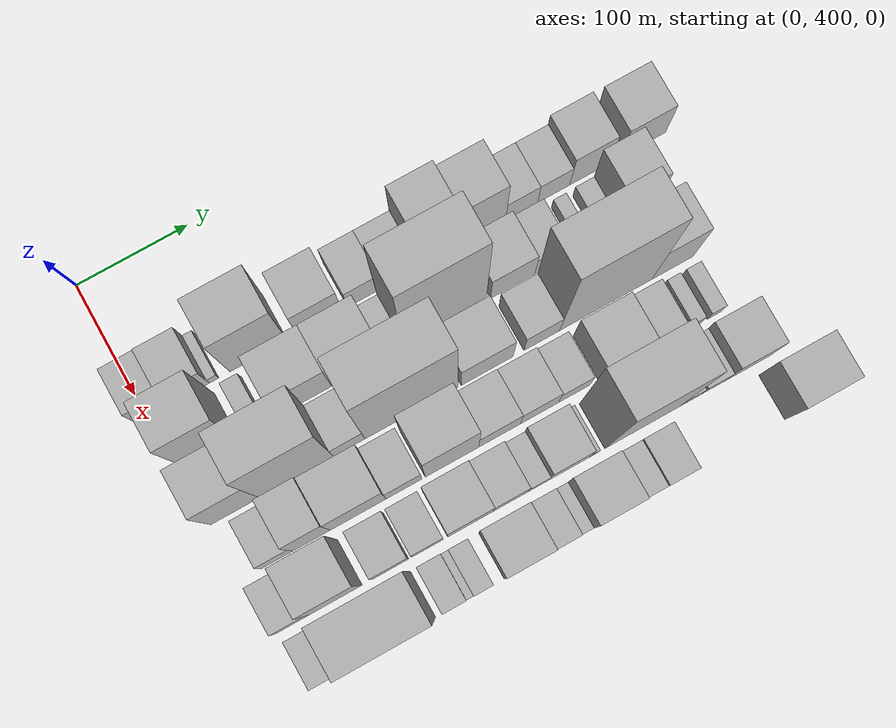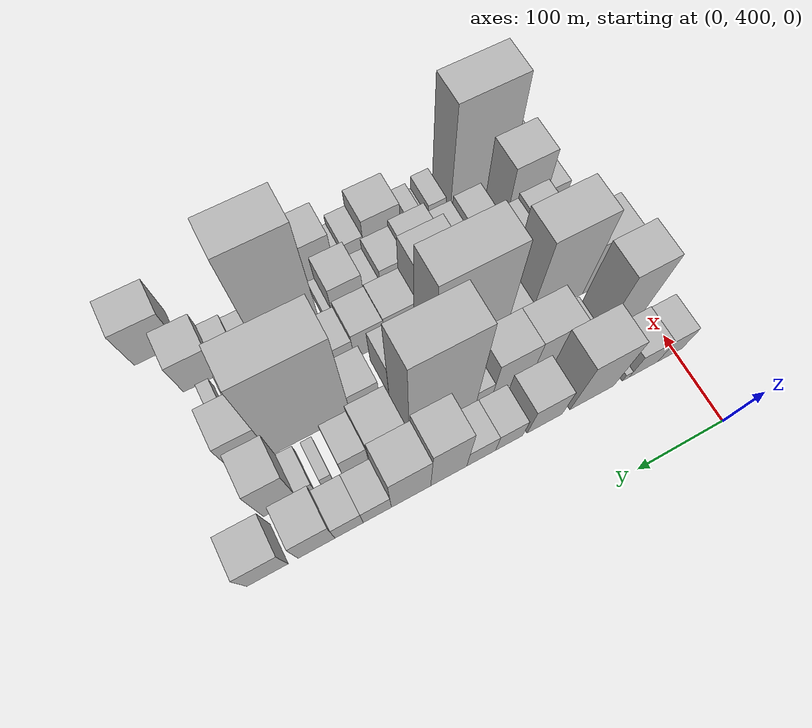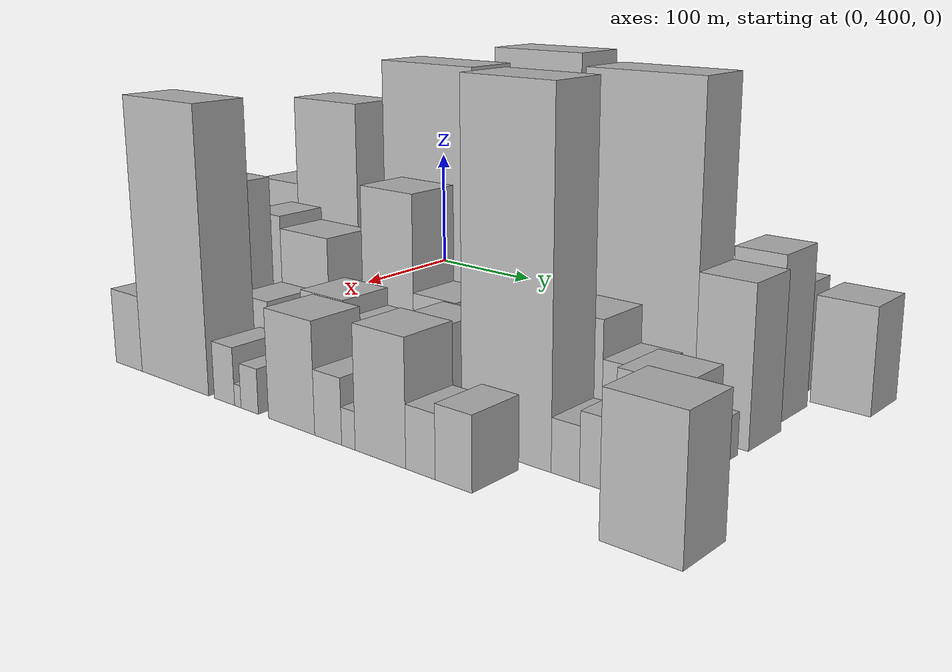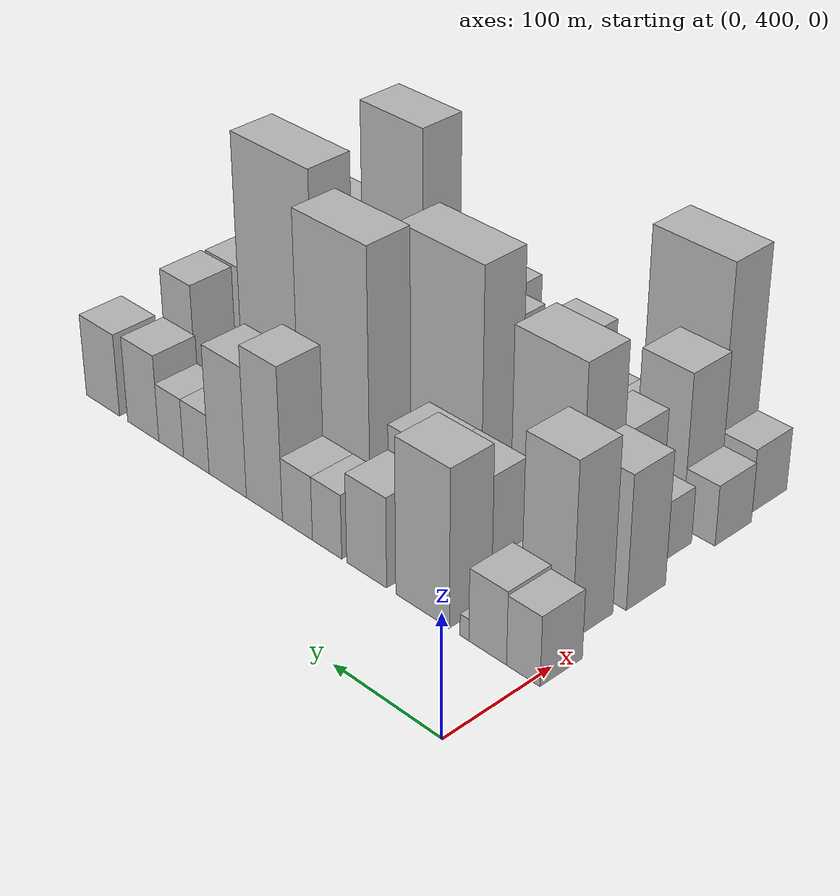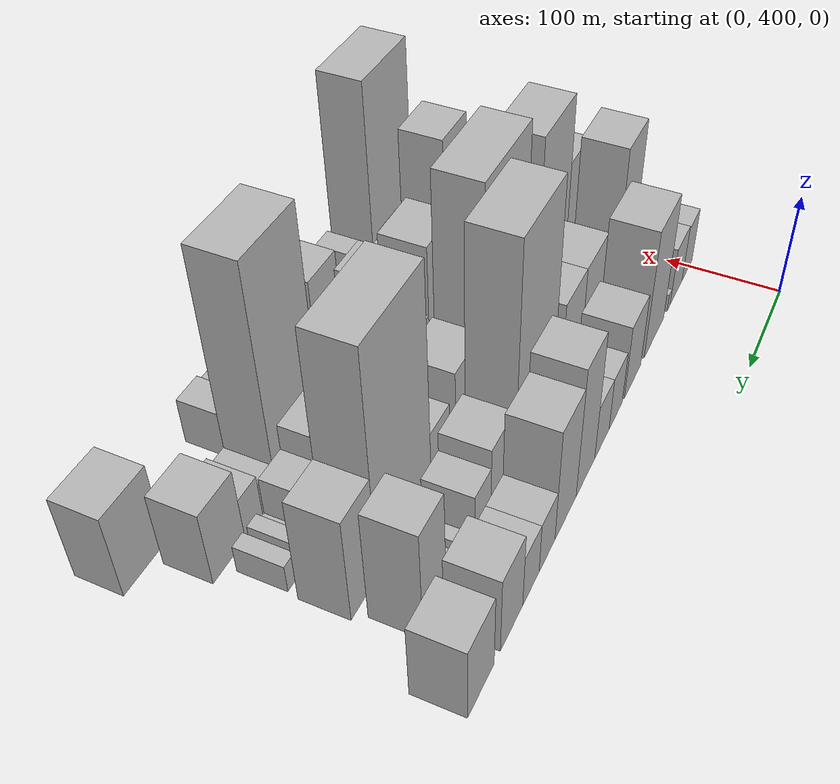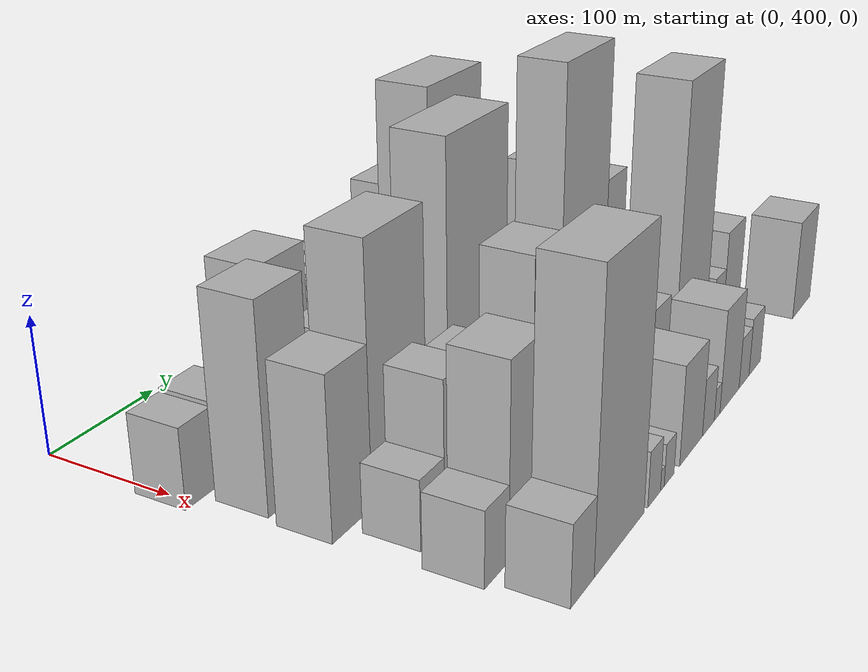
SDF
<sdf version="1.6">
 <world name="default">
  <model name="building_29">
   <static>1</static>
   <pose>100.0000 406.4023 0 0.000000 0.000000 0.000000</pose>
   <link name="link">
    <pose>0 0 28.50 0 0 0</pose>
    <collision name="collision"><geometry><box><size>40.0000 29.8800 57.0000</size></box></geometry></collision>
    <visual name="visual">
     <cast_shadows>0</cast_shadows>
     <geometry><box><size>40.0000 29.8800 57.0000</size></box></geometry>
     <material>
      <script>
       <uri>model://HANNAS_wall/materials/scripts</uri>
       <uri>model://HANNAS_wall/materials/textures</uri>
       <name>vrc/HANNAS_wall</name>
      </script>
     </material>
    </visual>
   </link>
  </model>
  <model name="building_30">
   <static>1</static>
   <pose>100.0000 438.5393 0 0.000000 0.000000 0.000000</pose>
   <link name="link">
    <pose>0 0 30.00 0 0 0</pose>
    <collision name="collision"><geometry><box><size>40.0000 34.3940 60.0000</size></box></geometry></collision>
    <visual name="visual">
     <cast_shadows>0</cast_shadows>
     <geometry><box><size>40.0000 34.3940 60.0000</size></box></geometry>
     <material>
      <script>
       <uri>model://HANNAS_wall/materials/scripts</uri>
       <uri>model://HANNAS_wall/materials/textures</uri>
       <name>vrc/HANNAS_wall</name>
      </script>
     </material>
    </visual>
   </link>
  </model>
  <model name="building_31">
   <static>1</static>
   <pose>100.0000 459.8285 0 0.000000 0.000000 0.000000</pose>
   <link name="link">
    <pose>0 0 9.00 0 0 0</pose>
    <collision name="collision"><geometry><box><size>40.0000 8.1844 18.0000</size></box></geometry></collision>
    <visual name="visual">
     <cast_shadows>0</cast_shadows>
     <geometry><box><size>40.0000 8.1844 18.0000</size></box></geometry>
     <material>
      <script>
       <uri>model://HANNAS_wall/materials/scripts</uri>
       <uri>model://HANNAS_wall/materials/textures</uri>
       <name>vrc/HANNAS_wall</name>
      </script>
     </material>
    </visual>
   </link>
  </model>
  <model name="building_32">
   <static>1</static>
   <pose>100.0000 499.5595 0 0.000000 0.000000 0.000000</pose>
   <link name="link">
    <pose>0 0 64.50 0 0 0</pose>
    <collision name="collision"><geometry><box><size>40.0000 51.2776 129.0000</size></box></geometry></collision>
    <visual name="visual">
     <cast_shadows>0</cast_shadows>
     <geometry><box><size>40.0000 51.2776 129.0000</size></box></geometry>
     <material>
      <script>
       <uri>model://HANNAS_wall/materials/scripts</uri>
       <uri>model://HANNAS_wall/materials/textures</uri>
       <name>vrc/HANNAS_wall</name>
      </script>
     </material>
    </visual>
   </link>
  </model>
  <model name="building_33">
   <static>1</static>
   <pose>100.0000 554.1945 0 0.000000 0.000000 0.000000</pose>
   <link name="link">
    <pose>0 0 37.50 0 0 0</pose>
    <collision name="collision"><geometry><box><size>40.0000 39.9924 75.0000</size></box></geometry></collision>
    <visual name="visual">
     <cast_shadows>0</cast_shadows>
     <geometry><box><size>40.0000 39.9924 75.0000</size></box></geometry>
     <material>
      <script>
       <uri>model://HANNAS_wall/materials/scripts</uri>
       <uri>model://HANNAS_wall/materials/textures</uri>
       <name>vrc/HANNAS_wall</name>
      </script>
     </material>
    </visual>
   </link>
  </model>
  <model name="building_34">
   <static>1</static>
   <pose>100.0000 594.3799 0 0.000000 0.000000 0.000000</pose>
   <link name="link">
    <pose>0 0 27.00 0 0 0</pose>
    <collision name="collision"><geometry><box><size>40.0000 30.3784 54.0000</size></box></geometry></collision>
    <visual name="visual">
     <cast_shadows>0</cast_shadows>
     <geometry><box><size>40.0000 30.3784 54.0000</size></box></geometry>
     <material>
      <script>
       <uri>model://HANNAS_wall/materials/scripts</uri>
       <uri>model://HANNAS_wall/materials/textures</uri>
       <name>vrc/HANNAS_wall</name>
      </script>
     </material>
    </visual>
   </link>
  </model>
  <model name="building_35">
   <static>1</static>
   <pose>100.0000 625.4198 0 0.000000 0.000000 0.000000</pose>
   <link name="link">
    <pose>0 0 27.00 0 0 0</pose>
    <collision name="collision"><geometry><box><size>40.0000 31.7014 54.0000</size></box></geometry></collision>
    <visual name="visual">
     <cast_shadows>0</cast_shadows>
     <geometry><box><size>40.0000 31.7014 54.0000</size></box></geometry>
     <material>
      <script>
       <uri>model://HANNAS_wall/materials/scripts</uri>
       <uri>model://HANNAS_wall/materials/textures</uri>
       <name>vrc/HANNAS_wall</name>
      </script>
     </material>
    </visual>
   </link>
  </model>
  <model name="building_36">
   <static>1</static>
   <pose>100.0000 660.8148 0 0.000000 0.000000 0.000000</pose>
   <link name="link">
    <pose>0 0 64.50 0 0 0</pose>
    <collision name="collision"><geometry><box><size>40.0000 39.0887 129.0000</size></box></geometry></collision>
    <visual name="visual">
     <cast_shadows>0</cast_shadows>
     <geometry><box><size>40.0000 39.0887 129.0000</size></box></geometry>
     <material>
      <script>
       <uri>model://HANNAS_wall/materials/scripts</uri>
       <uri>model://HANNAS_wall/materials/textures</uri>
       <name>vrc/HANNAS_wall</name>
      </script>
     </material>
    </visual>
   </link>
  </model>
  <model name="building_37">
   <static>1</static>
   <pose>100.0000 701.2705 0 0.000000 0.000000 0.000000</pose>
   <link name="link">
    <pose>0 0 55.50 0 0 0</pose>
    <collision name="collision"><geometry><box><size>40.0000 41.8226 111.0000</size></box></geometry></collision>
    <visual name="visual">
     <cast_shadows>0</cast_shadows>
     <geometry><box><size>40.0000 41.8226 111.0000</size></box></geometry>
     <material>
      <script>
       <uri>model://HANNAS_wall/materials/scripts</uri>
       <uri>model://HANNAS_wall/materials/textures</uri>
       <name>vrc/HANNAS_wall</name>
      </script>
     </material>
    </visual>
   </link>
  </model>
  <model name="building_38">
   <static>1</static>
   <pose>100.0000 736.8857 0 0.000000 0.000000 0.000000</pose>
   <link name="link">
    <pose>0 0 25.50 0 0 0</pose>
    <collision name="collision"><geometry><box><size>40.0000 29.4078 51.0000</size></box></geometry></collision>
    <visual name="visual">
     <cast_shadows>0</cast_shadows>
     <geometry><box><size>40.0000 29.4078 51.0000</size></box></geometry>
     <material>
      <script>
       <uri>model://HANNAS_wall/materials/scripts</uri>
       <uri>model://HANNAS_wall/materials/textures</uri>
       <name>vrc/HANNAS_wall</name>
      </script>
     </material>
    </visual>
   </link>
  </model>
  <model name="building_39">
   <static>1</static>
   <pose>100.0000 766.1120 0 0.000000 0.000000 0.000000</pose>
   <link name="link">
    <pose>0 0 25.50 0 0 0</pose>
    <collision name="collision"><geometry><box><size>40.0000 29.0448 51.0000</size></box></geometry></collision>
    <visual name="visual">
     <cast_shadows>0</cast_shadows>
     <geometry><box><size>40.0000 29.0448 51.0000</size></box></geometry>
     <material>
      <script>
       <uri>model://HANNAS_wall/materials/scripts</uri>
       <uri>model://HANNAS_wall/materials/textures</uri>
       <name>vrc/HANNAS_wall</name>
      </script>
     </material>
    </visual>
   </link>
  </model>
  <model name="building_40">
   <static>1</static>
   <pose>100.0000 799.3854 0 0.000000 0.000000 0.000000</pose>
   <link name="link">
    <pose>0 0 37.50 0 0 0</pose>
    <collision name="collision"><geometry><box><size>40.0000 37.5020 75.0000</size></box></geometry></collision>
    <visual name="visual">
     <cast_shadows>0</cast_shadows>
     <geometry><box><size>40.0000 37.5020 75.0000</size></box></geometry>
     <material>
      <script>
       <uri>model://HANNAS_wall/materials/scripts</uri>
       <uri>model://HANNAS_wall/materials/textures</uri>
       <name>vrc/HANNAS_wall</name>
      </script>
     </material>
    </visual>
   </link>
  </model>
  <model name="building_41">
   <static>1</static>
   <pose>100.0000 848.6596 0 0.000000 0.000000 0.000000</pose>
   <link name="link">
    <pose>0 0 36.00 0 0 0</pose>
    <collision name="collision"><geometry><box><size>40.0000 41.0464 72.0000</size></box></geometry></collision>
    <visual name="visual">
     <cast_shadows>0</cast_shadows>
     <geometry><box><size>40.0000 41.0464 72.0000</size></box></geometry>
     <material>
      <script>
       <uri>model://HANNAS_wall/materials/scripts</uri>
       <uri>model://HANNAS_wall/materials/textures</uri>
       <name>vrc/HANNAS_wall</name>
      </script>
     </material>
    </visual>
   </link>
  </model>
  <model name="building_82">
   <static>1</static>
   <pose>149.0000 431.8965 0 0.000000 0.000000 0.000000</pose>
   <link name="link">
    <pose>0 0 72.00 0 0 0</pose>
    <collision name="collision"><geometry><box><size>40.0000 46.3476 144.0000</size></box></geometry></collision>
    <visual name="visual">
     <cast_shadows>0</cast_shadows>
     <geometry><box><size>40.0000 46.3476 144.0000</size></box></geometry>
     <material>
      <script>
       <uri>model://HANNAS_wall/materials/scripts</uri>
       <uri>model://HANNAS_wall/materials/textures</uri>
       <name>vrc/HANNAS_wall</name>
      </script>
     </material>
    </visual>
   </link>
  </model>
  <model name="building_83">
   <static>1</static>
   <pose>149.0000 471.9510 0 0.000000 0.000000 0.000000</pose>
   <link name="link">
    <pose>0 0 15.00 0 0 0</pose>
    <collision name="collision"><geometry><box><size>40.0000 15.7613 30.0000</size></box></geometry></collision>
    <visual name="visual">
     <cast_shadows>0</cast_shadows>
     <geometry><box><size>40.0000 15.7613 30.0000</size></box></geometry>
     <material>
      <script>
       <uri>model://HANNAS_wall/materials/scripts</uri>
       <uri>model://HANNAS_wall/materials/textures</uri>
       <name>vrc/HANNAS_wall</name>
      </script>
     </material>
    </visual>
   </link>
  </model>
  <model name="building_84">
   <static>1</static>
   <pose>149.0000 513.9634 0 0.000000 0.000000 0.000000</pose>
   <link name="link">
    <pose>0 0 43.50 0 0 0</pose>
    <collision name="collision"><geometry><box><size>40.0000 48.2635 87.0000</size></box></geometry></collision>
    <visual name="visual">
     <cast_shadows>0</cast_shadows>
     <geometry><box><size>40.0000 48.2635 87.0000</size></box></geometry>
     <material>
      <script>
       <uri>model://HANNAS_wall/materials/scripts</uri>
       <uri>model://HANNAS_wall/materials/textures</uri>
       <name>vrc/HANNAS_wall</name>
      </script>
     </material>
    </visual>
   </link>
  </model>
  <model name="building_85">
   <static>1</static>
   <pose>149.0000 560.9323 0 0.000000 0.000000 0.000000</pose>
   <link name="link">
    <pose>0 0 43.50 0 0 0</pose>
    <collision name="collision"><geometry><box><size>40.0000 45.6744 87.0000</size></box></geometry></collision>
    <visual name="visual">
     <cast_shadows>0</cast_shadows>
     <geometry><box><size>40.0000 45.6744 87.0000</size></box></geometry>
     <material>
      <script>
       <uri>model://HANNAS_wall/materials/scripts</uri>
       <uri>model://HANNAS_wall/materials/textures</uri>
       <name>vrc/HANNAS_wall</name>
      </script>
     </material>
    </visual>
   </link>
  </model>
  <model name="building_86">
   <static>1</static>
   <pose>149.0000 593.2143 0 0.000000 0.000000 0.000000</pose>
   <link name="link">
    <pose>0 0 18.00 0 0 0</pose>
    <collision name="collision"><geometry><box><size>40.0000 18.8897 36.0000</size></box></geometry></collision>
    <visual name="visual">
     <cast_shadows>0</cast_shadows>
     <geometry><box><size>40.0000 18.8897 36.0000</size></box></geometry>
     <material>
      <script>
       <uri>model://HANNAS_wall/materials/scripts</uri>
       <uri>model://HANNAS_wall/materials/textures</uri>
       <name>vrc/HANNAS_wall</name>
      </script>
     </material>
    </visual>
   </link>
  </model>
  <model name="building_87">
   <static>1</static>
   <pose>149.0000 639.7672 0 0.000000 0.000000 0.000000</pose>
   <link name="link">
    <pose>0 0 109.50 0 0 0</pose>
    <collision name="collision"><geometry><box><size>40.0000 74.2161 219.0000</size></box></geometry></collision>
    <visual name="visual">
     <cast_shadows>0</cast_shadows>
     <geometry><box><size>40.0000 74.2161 219.0000</size></box></geometry>
     <material>
      <script>
       <uri>model://HANNAS_wall/materials/scripts</uri>
       <uri>model://HANNAS_wall/materials/textures</uri>
       <name>vrc/HANNAS_wall</name>
      </script>
     </material>
    </visual>
   </link>
  </model>
  <model name="building_88">
   <static>1</static>
   <pose>149.0000 700.9446 0 0.000000 0.000000 0.000000</pose>
   <link name="link">
    <pose>0 0 34.50 0 0 0</pose>
    <collision name="collision"><geometry><box><size>40.0000 40.1387 69.0000</size></box></geometry></collision>
    <visual name="visual">
     <cast_shadows>0</cast_shadows>
     <geometry><box><size>40.0000 40.1387 69.0000</size></box></geometry>
     <material>
      <script>
       <uri>model://HANNAS_wall/materials/scripts</uri>
       <uri>model://HANNAS_wall/materials/textures</uri>
       <name>vrc/HANNAS_wall</name>
      </script>
     </material>
    </visual>
   </link>
  </model>
  <model name="building_89">
   <static>1</static>
   <pose>149.0000 734.9529 0 0.000000 0.000000 0.000000</pose>
   <link name="link">
    <pose>0 0 25.50 0 0 0</pose>
    <collision name="collision"><geometry><box><size>40.0000 27.8779 51.0000</size></box></geometry></collision>
    <visual name="visual">
     <cast_shadows>0</cast_shadows>
     <geometry><box><size>40.0000 27.8779 51.0000</size></box></geometry>
     <material>
      <script>
       <uri>model://HANNAS_wall/materials/scripts</uri>
       <uri>model://HANNAS_wall/materials/textures</uri>
       <name>vrc/HANNAS_wall</name>
      </script>
     </material>
    </visual>
   </link>
  </model>
  <model name="building_90">
   <static>1</static>
   <pose>149.0000 764.7076 0 0.000000 0.000000 0.000000</pose>
   <link name="link">
    <pose>0 0 13.50 0 0 0</pose>
    <collision name="collision"><geometry><box><size>40.0000 11.6316 27.0000</size></box></geometry></collision>
    <visual name="visual">
     <cast_shadows>0</cast_shadows>
     <geometry><box><size>40.0000 11.6316 27.0000</size></box></geometry>
     <material>
      <script>
       <uri>model://HANNAS_wall/materials/scripts</uri>
       <uri>model://HANNAS_wall/materials/textures</uri>
       <name>vrc/HANNAS_wall</name>
      </script>
     </material>
    </visual>
   </link>
  </model>
  <model name="building_91">
   <static>1</static>
   <pose>149.0000 786.8840 0 0.000000 0.000000 0.000000</pose>
   <link name="link">
    <pose>0 0 15.00 0 0 0</pose>
    <collision name="collision"><geometry><box><size>40.0000 16.7212 30.0000</size></box></geometry></collision>
    <visual name="visual">
     <cast_shadows>0</cast_shadows>
     <geometry><box><size>40.0000 16.7212 30.0000</size></box></geometry>
     <material>
      <script>
       <uri>model://HANNAS_wall/materials/scripts</uri>
       <uri>model://HANNAS_wall/materials/textures</uri>
       <name>vrc/HANNAS_wall</name>
      </script>
     </material>
    </visual>
   </link>
  </model>
  <model name="building_92">
   <static>1</static>
   <pose>149.0000 812.8694 0 0.000000 0.000000 0.000000</pose>
   <link name="link">
    <pose>0 0 54.00 0 0 0</pose>
    <collision name="collision"><geometry><box><size>40.0000 35.2496 108.0000</size></box></geometry></collision>
    <visual name="visual">
     <cast_shadows>0</cast_shadows>
     <geometry><box><size>40.0000 35.2496 108.0000</size></box></geometry>
     <material>
      <script>
       <uri>model://HANNAS_wall/materials/scripts</uri>
       <uri>model://HANNAS_wall/materials/textures</uri>
       <name>vrc/HANNAS_wall</name>
      </script>
     </material>
    </visual>
   </link>
  </model>
  <model name="building_133">
   <static>1</static>
   <pose>198.0000 426.0034 0 0.000000 0.000000 0.000000</pose>
   <link name="link">
    <pose>0 0 55.50 0 0 0</pose>
    <collision name="collision"><geometry><box><size>40.0000 42.8497 111.0000</size></box></geometry></collision>
    <visual name="visual">
     <cast_shadows>0</cast_shadows>
     <geometry><box><size>40.0000 42.8497 111.0000</size></box></geometry>
     <material>
      <script>
       <uri>model://HANNAS_wall/materials/scripts</uri>
       <uri>model://HANNAS_wall/materials/textures</uri>
       <name>vrc/HANNAS_wall</name>
      </script>
     </material>
    </visual>
   </link>
  </model>
  <model name="building_134">
   <static>1</static>
   <pose>198.0000 480.1578 0 0.000000 0.000000 0.000000</pose>
   <link name="link">
    <pose>0 0 88.50 0 0 0</pose>
    <collision name="collision"><geometry><box><size>40.0000 65.4592 177.0000</size></box></geometry></collision>
    <visual name="visual">
     <cast_shadows>0</cast_shadows>
     <geometry><box><size>40.0000 65.4592 177.0000</size></box></geometry>
     <material>
      <script>
       <uri>model://HANNAS_wall/materials/scripts</uri>
       <uri>model://HANNAS_wall/materials/textures</uri>
       <name>vrc/HANNAS_wall</name>
      </script>
     </material>
    </visual>
   </link>
  </model>
  <model name="building_135">
   <static>1</static>
   <pose>198.0000 526.9653 0 0.000000 0.000000 0.000000</pose>
   <link name="link">
    <pose>0 0 24.00 0 0 0</pose>
    <collision name="collision"><geometry><box><size>40.0000 28.1558 48.0000</size></box></geometry></collision>
    <visual name="visual">
     <cast_shadows>0</cast_shadows>
     <geometry><box><size>40.0000 28.1558 48.0000</size></box></geometry>
     <material>
      <script>
       <uri>model://HANNAS_wall/materials/scripts</uri>
       <uri>model://HANNAS_wall/materials/textures</uri>
       <name>vrc/HANNAS_wall</name>
      </script>
     </material>
    </visual>
   </link>
  </model>
  <model name="building_136">
   <static>1</static>
   <pose>198.0000 582.4187 0 0.000000 0.000000 0.000000</pose>
   <link name="link">
    <pose>0 0 105.00 0 0 0</pose>
    <collision name="collision"><geometry><box><size>40.0000 82.7510 210.0000</size></box></geometry></collision>
    <visual name="visual">
     <cast_shadows>0</cast_shadows>
     <geometry><box><size>40.0000 82.7510 210.0000</size></box></geometry>
     <material>
      <script>
       <uri>model://HANNAS_wall/materials/scripts</uri>
       <uri>model://HANNAS_wall/materials/textures</uri>
       <name>vrc/HANNAS_wall</name>
      </script>
     </material>
    </visual>
   </link>
  </model>
  <model name="building_137">
   <static>1</static>
   <pose>198.0000 650.1259 0 0.000000 0.000000 0.000000</pose>
   <link name="link">
    <pose>0 0 39.00 0 0 0</pose>
    <collision name="collision"><geometry><box><size>40.0000 46.6636 78.0000</size></box></geometry></collision>
    <visual name="visual">
     <cast_shadows>0</cast_shadows>
     <geometry><box><size>40.0000 46.6636 78.0000</size></box></geometry>
     <material>
      <script>
       <uri>model://HANNAS_wall/materials/scripts</uri>
       <uri>model://HANNAS_wall/materials/textures</uri>
       <name>vrc/HANNAS_wall</name>
      </script>
     </material>
    </visual>
   </link>
  </model>
  <model name="building_138">
   <static>1</static>
   <pose>198.0000 699.4425 0 0.000000 0.000000 0.000000</pose>
   <link name="link">
    <pose>0 0 28.50 0 0 0</pose>
    <collision name="collision"><geometry><box><size>40.0000 31.9695 57.0000</size></box></geometry></collision>
    <visual name="visual">
     <cast_shadows>0</cast_shadows>
     <geometry><box><size>40.0000 31.9695 57.0000</size></box></geometry>
     <material>
      <script>
       <uri>model://HANNAS_wall/materials/scripts</uri>
       <uri>model://HANNAS_wall/materials/textures</uri>
       <name>vrc/HANNAS_wall</name>
      </script>
     </material>
    </visual>
   </link>
  </model>
  <model name="building_139">
   <static>1</static>
   <pose>198.0000 757.5157 0 0.000000 0.000000 0.000000</pose>
   <link name="link">
    <pose>0 0 108.00 0 0 0</pose>
    <collision name="collision"><geometry><box><size>40.0000 84.1770 216.0000</size></box></geometry></collision>
    <visual name="visual">
     <cast_shadows>0</cast_shadows>
     <geometry><box><size>40.0000 84.1770 216.0000</size></box></geometry>
     <material>
      <script>
       <uri>model://HANNAS_wall/materials/scripts</uri>
       <uri>model://HANNAS_wall/materials/textures</uri>
       <name>vrc/HANNAS_wall</name>
      </script>
     </material>
    </visual>
   </link>
  </model>
  <model name="building_140">
   <static>1</static>
   <pose>198.0000 818.4110 0 0.000000 0.000000 0.000000</pose>
   <link name="link">
    <pose>0 0 51.00 0 0 0</pose>
    <collision name="collision"><geometry><box><size>40.0000 37.6136 102.0000</size></box></geometry></collision>
    <visual name="visual">
     <cast_shadows>0</cast_shadows>
     <geometry><box><size>40.0000 37.6136 102.0000</size></box></geometry>
     <material>
      <script>
       <uri>model://HANNAS_wall/materials/scripts</uri>
       <uri>model://HANNAS_wall/materials/textures</uri>
       <name>vrc/HANNAS_wall</name>
      </script>
     </material>
    </visual>
   </link>
  </model>
  <model name="building_179">
   <static>1</static>
   <pose>247.0000 436.6323 0 0.000000 0.000000 0.000000</pose>
   <link name="link">
    <pose>0 0 24.00 0 0 0</pose>
    <collision name="collision"><geometry><box><size>40.0000 27.7295 48.0000</size></box></geometry></collision>
    <visual name="visual">
     <cast_shadows>0</cast_shadows>
     <geometry><box><size>40.0000 27.7295 48.0000</size></box></geometry>
     <material>
      <script>
       <uri>model://HANNAS_wall/materials/scripts</uri>
       <uri>model://HANNAS_wall/materials/textures</uri>
       <name>vrc/HANNAS_wall</name>
      </script>
     </material>
    </visual>
   </link>
  </model>
  <model name="building_180">
   <static>1</static>
   <pose>247.0000 466.9779 0 0.000000 0.000000 0.000000</pose>
   <link name="link">
    <pose>0 0 49.50 0 0 0</pose>
    <collision name="collision"><geometry><box><size>40.0000 32.9617 99.0000</size></box></geometry></collision>
    <visual name="visual">
     <cast_shadows>0</cast_shadows>
     <geometry><box><size>40.0000 32.9617 99.0000</size></box></geometry>
     <material>
      <script>
       <uri>model://HANNAS_wall/materials/scripts</uri>
       <uri>model://HANNAS_wall/materials/textures</uri>
       <name>vrc/HANNAS_wall</name>
      </script>
     </material>
    </visual>
   </link>
  </model>
  <model name="building_181">
   <static>1</static>
   <pose>247.0000 508.1916 0 0.000000 0.000000 0.000000</pose>
   <link name="link">
    <pose>0 0 45.00 0 0 0</pose>
    <collision name="collision"><geometry><box><size>40.0000 49.4657 90.0000</size></box></geometry></collision>
    <visual name="visual">
     <cast_shadows>0</cast_shadows>
     <geometry><box><size>40.0000 49.4657 90.0000</size></box></geometry>
     <material>
      <script>
       <uri>model://HANNAS_wall/materials/scripts</uri>
       <uri>model://HANNAS_wall/materials/textures</uri>
       <name>vrc/HANNAS_wall</name>
      </script>
     </material>
    </visual>
   </link>
  </model>
  <model name="building_182">
   <static>1</static>
   <pose>247.0000 548.6963 0 0.000000 0.000000 0.000000</pose>
   <link name="link">
    <pose>0 0 27.00 0 0 0</pose>
    <collision name="collision"><geometry><box><size>40.0000 31.5438 54.0000</size></box></geometry></collision>
    <visual name="visual">
     <cast_shadows>0</cast_shadows>
     <geometry><box><size>40.0000 31.5438 54.0000</size></box></geometry>
     <material>
      <script>
       <uri>model://HANNAS_wall/materials/scripts</uri>
       <uri>model://HANNAS_wall/materials/textures</uri>
       <name>vrc/HANNAS_wall</name>
      </script>
     </material>
    </visual>
   </link>
  </model>
  <model name="building_183">
   <static>1</static>
   <pose>247.0000 591.1783 0 0.000000 0.000000 0.000000</pose>
   <link name="link">
    <pose>0 0 66.00 0 0 0</pose>
    <collision name="collision"><geometry><box><size>40.0000 47.4202 132.0000</size></box></geometry></collision>
    <visual name="visual">
     <cast_shadows>0</cast_shadows>
     <geometry><box><size>40.0000 47.4202 132.0000</size></box></geometry>
     <material>
      <script>
       <uri>model://HANNAS_wall/materials/scripts</uri>
       <uri>model://HANNAS_wall/materials/textures</uri>
       <name>vrc/HANNAS_wall</name>
      </script>
     </material>
    </visual>
   </link>
  </model>
  <model name="building_184">
   <static>1</static>
   <pose>247.0000 633.5141 0 0.000000 0.000000 0.000000</pose>
   <link name="link">
    <pose>0 0 33.00 0 0 0</pose>
    <collision name="collision"><geometry><box><size>40.0000 37.2514 66.0000</size></box></geometry></collision>
    <visual name="visual">
     <cast_shadows>0</cast_shadows>
     <geometry><box><size>40.0000 37.2514 66.0000</size></box></geometry>
     <material>
      <script>
       <uri>model://HANNAS_wall/materials/scripts</uri>
       <uri>model://HANNAS_wall/materials/textures</uri>
       <name>vrc/HANNAS_wall</name>
      </script>
     </material>
    </visual>
   </link>
  </model>
  <model name="building_185">
   <static>1</static>
   <pose>247.0000 669.2434 0 0.000000 0.000000 0.000000</pose>
   <link name="link">
    <pose>0 0 31.50 0 0 0</pose>
    <collision name="collision"><geometry><box><size>40.0000 34.2072 63.0000</size></box></geometry></collision>
    <visual name="visual">
     <cast_shadows>0</cast_shadows>
     <geometry><box><size>40.0000 34.2072 63.0000</size></box></geometry>
     <material>
      <script>
       <uri>model://HANNAS_wall/materials/scripts</uri>
       <uri>model://HANNAS_wall/materials/textures</uri>
       <name>vrc/HANNAS_wall</name>
      </script>
     </material>
    </visual>
   </link>
  </model>
  <model name="building_186">
   <static>1</static>
   <pose>247.0000 700.5527 0 0.000000 0.000000 0.000000</pose>
   <link name="link">
    <pose>0 0 25.50 0 0 0</pose>
    <collision name="collision"><geometry><box><size>40.0000 28.4115 51.0000</size></box></geometry></collision>
    <visual name="visual">
     <cast_shadows>0</cast_shadows>
     <geometry><box><size>40.0000 28.4115 51.0000</size></box></geometry>
     <material>
      <script>
       <uri>model://HANNAS_wall/materials/scripts</uri>
       <uri>model://HANNAS_wall/materials/textures</uri>
       <name>vrc/HANNAS_wall</name>
      </script>
     </material>
    </visual>
   </link>
  </model>
  <model name="building_187">
   <static>1</static>
   <pose>247.0000 744.7683 0 0.000000 0.000000 0.000000</pose>
   <link name="link">
    <pose>0 0 39.00 0 0 0</pose>
    <collision name="collision"><geometry><box><size>40.0000 44.0196 78.0000</size></box></geometry></collision>
    <visual name="visual">
     <cast_shadows>0</cast_shadows>
     <geometry><box><size>40.0000 44.0196 78.0000</size></box></geometry>
     <material>
      <script>
       <uri>model://HANNAS_wall/materials/scripts</uri>
       <uri>model://HANNAS_wall/materials/textures</uri>
       <name>vrc/HANNAS_wall</name>
      </script>
     </material>
    </visual>
   </link>
  </model>
  <model name="building_188">
   <static>1</static>
   <pose>247.0000 781.3986 0 0.000000 0.000000 0.000000</pose>
   <link name="link">
    <pose>0 0 27.00 0 0 0</pose>
    <collision name="collision"><geometry><box><size>40.0000 29.2410 54.0000</size></box></geometry></collision>
    <visual name="visual">
     <cast_shadows>0</cast_shadows>
     <geometry><box><size>40.0000 29.2410 54.0000</size></box></geometry>
     <material>
      <script>
       <uri>model://HANNAS_wall/materials/scripts</uri>
       <uri>model://HANNAS_wall/materials/textures</uri>
       <name>vrc/HANNAS_wall</name>
      </script>
     </material>
    </visual>
   </link>
  </model>
  <model name="building_189">
   <static>1</static>
   <pose>247.0000 800.2303 0 0.000000 0.000000 0.000000</pose>
   <link name="link">
    <pose>0 0 9.00 0 0 0</pose>
    <collision name="collision"><geometry><box><size>40.0000 8.4225 18.0000</size></box></geometry></collision>
    <visual name="visual">
     <cast_shadows>0</cast_shadows>
     <geometry><box><size>40.0000 8.4225 18.0000</size></box></geometry>
     <material>
      <script>
       <uri>model://HANNAS_wall/materials/scripts</uri>
       <uri>model://HANNAS_wall/materials/textures</uri>
       <name>vrc/HANNAS_wall</name>
      </script>
     </material>
    </visual>
   </link>
  </model>
  <model name="building_190">
   <static>1</static>
   <pose>247.0000 810.5196 0 0.000000 0.000000 0.000000</pose>
   <link name="link">
    <pose>0 0 13.50 0 0 0</pose>
    <collision name="collision"><geometry><box><size>40.0000 12.1562 27.0000</size></box></geometry></collision>
    <visual name="visual">
     <cast_shadows>0</cast_shadows>
     <geometry><box><size>40.0000 12.1562 27.0000</size></box></geometry>
     <material>
      <script>
       <uri>model://HANNAS_wall/materials/scripts</uri>
       <uri>model://HANNAS_wall/materials/textures</uri>
       <name>vrc/HANNAS_wall</name>
      </script>
     </material>
    </visual>
   </link>
  </model>
  <model name="building_191">
   <static>1</static>
   <pose>247.0000 828.2907 0 0.000000 0.000000 0.000000</pose>
   <link name="link">
    <pose>0 0 13.50 0 0 0</pose>
    <collision name="collision"><geometry><box><size>40.0000 13.3859 27.0000</size></box></geometry></collision>
    <visual name="visual">
     <cast_shadows>0</cast_shadows>
     <geometry><box><size>40.0000 13.3859 27.0000</size></box></geometry>
     <material>
      <script>
       <uri>model://HANNAS_wall/materials/scripts</uri>
       <uri>model://HANNAS_wall/materials/textures</uri>
       <name>vrc/HANNAS_wall</name>
      </script>
     </material>
    </visual>
   </link>
  </model>
  <model name="building_223">
   <static>1</static>
   <pose>296.0000 423.7544 0 0.000000 0.000000 0.000000</pose>
   <link name="link">
    <pose>0 0 25.50 0 0 0</pose>
    <collision name="collision"><geometry><box><size>40.0000 29.4003 51.0000</size></box></geometry></collision>
    <visual name="visual">
     <cast_shadows>0</cast_shadows>
     <geometry><box><size>40.0000 29.4003 51.0000</size></box></geometry>
     <material>
      <script>
       <uri>model://HANNAS_wall/materials/scripts</uri>
       <uri>model://HANNAS_wall/materials/textures</uri>
       <name>vrc/HANNAS_wall</name>
      </script>
     </material>
    </visual>
   </link>
  </model>
  <model name="building_224">
   <static>1</static>
   <pose>296.0000 461.4888 0 0.000000 0.000000 0.000000</pose>
   <link name="link">
    <pose>0 0 64.50 0 0 0</pose>
    <collision name="collision"><geometry><box><size>40.0000 46.0684 129.0000</size></box></geometry></collision>
    <visual name="visual">
     <cast_shadows>0</cast_shadows>
     <geometry><box><size>40.0000 46.0684 129.0000</size></box></geometry>
     <material>
      <script>
       <uri>model://HANNAS_wall/materials/scripts</uri>
       <uri>model://HANNAS_wall/materials/textures</uri>
       <name>vrc/HANNAS_wall</name>
      </script>
     </material>
    </visual>
   </link>
  </model>
  <model name="building_225">
   <static>1</static>
   <pose>296.0000 509.5314 0 0.000000 0.000000 0.000000</pose>
   <link name="link">
    <pose>0 0 27.00 0 0 0</pose>
    <collision name="collision"><geometry><box><size>40.0000 32.0168 54.0000</size></box></geometry></collision>
    <visual name="visual">
     <cast_shadows>0</cast_shadows>
     <geometry><box><size>40.0000 32.0168 54.0000</size></box></geometry>
     <material>
      <script>
       <uri>model://HANNAS_wall/materials/scripts</uri>
       <uri>model://HANNAS_wall/materials/textures</uri>
       <name>vrc/HANNAS_wall</name>
      </script>
     </material>
    </visual>
   </link>
  </model>
  <model name="building_226">
   <static>1</static>
   <pose>296.0000 542.3230 0 0.000000 0.000000 0.000000</pose>
   <link name="link">
    <pose>0 0 24.00 0 0 0</pose>
    <collision name="collision"><geometry><box><size>40.0000 27.5664 48.0000</size></box></geometry></collision>
    <visual name="visual">
     <cast_shadows>0</cast_shadows>
     <geometry><box><size>40.0000 27.5664 48.0000</size></box></geometry>
     <material>
      <script>
       <uri>model://HANNAS_wall/materials/scripts</uri>
       <uri>model://HANNAS_wall/materials/textures</uri>
       <name>vrc/HANNAS_wall</name>
      </script>
     </material>
    </visual>
   </link>
  </model>
  <model name="building_227">
   <static>1</static>
   <pose>296.0000 580.2121 0 0.000000 0.000000 0.000000</pose>
   <link name="link">
    <pose>0 0 34.50 0 0 0</pose>
    <collision name="collision"><geometry><box><size>40.0000 40.2119 69.0000</size></box></geometry></collision>
    <visual name="visual">
     <cast_shadows>0</cast_shadows>
     <geometry><box><size>40.0000 40.2119 69.0000</size></box></geometry>
     <material>
      <script>
       <uri>model://HANNAS_wall/materials/scripts</uri>
       <uri>model://HANNAS_wall/materials/textures</uri>
       <name>vrc/HANNAS_wall</name>
      </script>
     </material>
    </visual>
   </link>
  </model>
  <model name="building_228">
   <static>1</static>
   <pose>296.0000 615.7628 0 0.000000 0.000000 0.000000</pose>
   <link name="link">
    <pose>0 0 28.50 0 0 0</pose>
    <collision name="collision"><geometry><box><size>40.0000 30.8896 57.0000</size></box></geometry></collision>
    <visual name="visual">
     <cast_shadows>0</cast_shadows>
     <geometry><box><size>40.0000 30.8896 57.0000</size></box></geometry>
     <material>
      <script>
       <uri>model://HANNAS_wall/materials/scripts</uri>
       <uri>model://HANNAS_wall/materials/textures</uri>
       <name>vrc/HANNAS_wall</name>
      </script>
     </material>
    </visual>
   </link>
  </model>
  <model name="building_229">
   <static>1</static>
   <pose>296.0000 640.5850 0 0.000000 0.000000 0.000000</pose>
   <link name="link">
    <pose>0 0 18.00 0 0 0</pose>
    <collision name="collision"><geometry><box><size>40.0000 18.7548 36.0000</size></box></geometry></collision>
    <visual name="visual">
     <cast_shadows>0</cast_shadows>
     <geometry><box><size>40.0000 18.7548 36.0000</size></box></geometry>
     <material>
      <script>
       <uri>model://HANNAS_wall/materials/scripts</uri>
       <uri>model://HANNAS_wall/materials/textures</uri>
       <name>vrc/HANNAS_wall</name>
      </script>
     </material>
    </visual>
   </link>
  </model>
  <model name="building_230">
   <static>1</static>
   <pose>296.0000 667.9397 0 0.000000 0.000000 0.000000</pose>
   <link name="link">
    <pose>0 0 34.50 0 0 0</pose>
    <collision name="collision"><geometry><box><size>40.0000 35.9548 69.0000</size></box></geometry></collision>
    <visual name="visual">
     <cast_shadows>0</cast_shadows>
     <geometry><box><size>40.0000 35.9548 69.0000</size></box></geometry>
     <material>
      <script>
       <uri>model://HANNAS_wall/materials/scripts</uri>
       <uri>model://HANNAS_wall/materials/textures</uri>
       <name>vrc/HANNAS_wall</name>
      </script>
     </material>
    </visual>
   </link>
  </model>
  <model name="building_231">
   <static>1</static>
   <pose>296.0000 690.1365 0 0.000000 0.000000 0.000000</pose>
   <link name="link">
    <pose>0 0 10.50 0 0 0</pose>
    <collision name="collision"><geometry><box><size>40.0000 8.4389 21.0000</size></box></geometry></collision>
    <visual name="visual">
     <cast_shadows>0</cast_shadows>
     <geometry><box><size>40.0000 8.4389 21.0000</size></box></geometry>
     <material>
      <script>
       <uri>model://HANNAS_wall/materials/scripts</uri>
       <uri>model://HANNAS_wall/materials/textures</uri>
       <name>vrc/HANNAS_wall</name>
      </script>
     </material>
    </visual>
   </link>
  </model>
  <model name="building_232">
   <static>1</static>
   <pose>296.0000 733.7344 0 0.000000 0.000000 0.000000</pose>
   <link name="link">
    <pose>0 0 109.50 0 0 0</pose>
    <collision name="collision"><geometry><box><size>40.0000 66.7569 219.0000</size></box></geometry></collision>
    <visual name="visual">
     <cast_shadows>0</cast_shadows>
     <geometry><box><size>40.0000 66.7569 219.0000</size></box></geometry>
     <material>
      <script>
       <uri>model://HANNAS_wall/materials/scripts</uri>
       <uri>model://HANNAS_wall/materials/textures</uri>
       <name>vrc/HANNAS_wall</name>
      </script>
     </material>
    </visual>
   </link>
  </model>
  <model name="building_233">
   <static>1</static>
   <pose>296.0000 776.9164 0 0.000000 0.000000 0.000000</pose>
   <link name="link">
    <pose>0 0 16.50 0 0 0</pose>
    <collision name="collision"><geometry><box><size>40.0000 19.6071 33.0000</size></box></geometry></collision>
    <visual name="visual">
     <cast_shadows>0</cast_shadows>
     <geometry><box><size>40.0000 19.6071 33.0000</size></box></geometry>
     <material>
      <script>
       <uri>model://HANNAS_wall/materials/scripts</uri>
       <uri>model://HANNAS_wall/materials/textures</uri>
       <name>vrc/HANNAS_wall</name>
      </script>
     </material>
    </visual>
   </link>
  </model>
  <model name="building_234">
   <static>1</static>
   <pose>296.0000 798.2952 0 0.000000 0.000000 0.000000</pose>
   <link name="link">
    <pose>0 0 21.00 0 0 0</pose>
    <collision name="collision"><geometry><box><size>40.0000 23.1507 42.0000</size></box></geometry></collision>
    <visual name="visual">
     <cast_shadows>0</cast_shadows>
     <geometry><box><size>40.0000 23.1507 42.0000</size></box></geometry>
     <material>
      <script>
       <uri>model://HANNAS_wall/materials/scripts</uri>
       <uri>model://HANNAS_wall/materials/textures</uri>
       <name>vrc/HANNAS_wall</name>
      </script>
     </material>
    </visual>
   </link>
  </model>
  <model name="building_235">
   <static>1</static>
   <pose>296.0000 830.0603 0 0.000000 0.000000 0.000000</pose>
   <link name="link">
    <pose>0 0 36.00 0 0 0</pose>
    <collision name="collision"><geometry><box><size>40.0000 40.3795 72.0000</size></box></geometry></collision>
    <visual name="visual">
     <cast_shadows>0</cast_shadows>
     <geometry><box><size>40.0000 40.3795 72.0000</size></box></geometry>
     <material>
      <script>
       <uri>model://HANNAS_wall/materials/scripts</uri>
       <uri>model://HANNAS_wall/materials/textures</uri>
       <name>vrc/HANNAS_wall</name>
      </script>
     </material>
    </visual>
   </link>
  </model>
  <model name="building_269">
   <static>1</static>
   <pose>345.0000 431.8510 0 0.000000 0.000000 0.000000</pose>
   <link name="link">
    <pose>0 0 27.00 0 0 0</pose>
    <collision name="collision"><geometry><box><size>40.0000 31.4396 54.0000</size></box></geometry></collision>
    <visual name="visual">
     <cast_shadows>0</cast_shadows>
     <geometry><box><size>40.0000 31.4396 54.0000</size></box></geometry>
     <material>
      <script>
       <uri>model://HANNAS_wall/materials/scripts</uri>
       <uri>model://HANNAS_wall/materials/textures</uri>
       <name>vrc/HANNAS_wall</name>
      </script>
     </material>
    </visual>
   </link>
  </model>
  <model name="building_270">
   <static>1</static>
   <pose>345.0000 484.7588 0 0.000000 0.000000 0.000000</pose>
   <link name="link">
    <pose>0 0 96.00 0 0 0</pose>
    <collision name="collision"><geometry><box><size>40.0000 74.3759 192.0000</size></box></geometry></collision>
    <visual name="visual">
     <cast_shadows>0</cast_shadows>
     <geometry><box><size>40.0000 74.3759 192.0000</size></box></geometry>
     <material>
      <script>
       <uri>model://HANNAS_wall/materials/scripts</uri>
       <uri>model://HANNAS_wall/materials/textures</uri>
       <name>vrc/HANNAS_wall</name>
      </script>
     </material>
    </visual>
   </link>
  </model>
  <model name="building_271">
   <static>1</static>
   <pose>345.0000 538.4188 0 0.000000 0.000000 0.000000</pose>
   <link name="link">
    <pose>0 0 19.50 0 0 0</pose>
    <collision name="collision"><geometry><box><size>40.0000 20.9442 39.0000</size></box></geometry></collision>
    <visual name="visual">
     <cast_shadows>0</cast_shadows>
     <geometry><box><size>40.0000 20.9442 39.0000</size></box></geometry>
     <material>
      <script>
       <uri>model://HANNAS_wall/materials/scripts</uri>
       <uri>model://HANNAS_wall/materials/textures</uri>
       <name>vrc/HANNAS_wall</name>
      </script>
     </material>
    </visual>
   </link>
  </model>
  <model name="building_272">
   <static>1</static>
   <pose>345.0000 552.0913 0 0.000000 0.000000 0.000000</pose>
   <link name="link">
    <pose>0 0 7.50 0 0 0</pose>
    <collision name="collision"><geometry><box><size>40.0000 6.4006 15.0000</size></box></geometry></collision>
    <visual name="visual">
     <cast_shadows>0</cast_shadows>
     <geometry><box><size>40.0000 6.4006 15.0000</size></box></geometry>
     <material>
      <script>
       <uri>model://HANNAS_wall/materials/scripts</uri>
       <uri>model://HANNAS_wall/materials/textures</uri>
       <name>vrc/HANNAS_wall</name>
      </script>
     </material>
    </visual>
   </link>
  </model>
  <model name="building_273">
   <static>1</static>
   <pose>345.0000 563.8605 0 0.000000 0.000000 0.000000</pose>
   <link name="link">
    <pose>0 0 15.00 0 0 0</pose>
    <collision name="collision"><geometry><box><size>40.0000 17.1378 30.0000</size></box></geometry></collision>
    <visual name="visual">
     <cast_shadows>0</cast_shadows>
     <geometry><box><size>40.0000 17.1378 30.0000</size></box></geometry>
     <material>
      <script>
       <uri>model://HANNAS_wall/materials/scripts</uri>
       <uri>model://HANNAS_wall/materials/textures</uri>
       <name>vrc/HANNAS_wall</name>
      </script>
     </material>
    </visual>
   </link>
  </model>
  <model name="building_274">
   <static>1</static>
   <pose>345.0000 603.8084 0 0.000000 0.000000 0.000000</pose>
   <link name="link">
    <pose>0 0 36.00 0 0 0</pose>
    <collision name="collision"><geometry><box><size>40.0000 42.7579 72.0000</size></box></geometry></collision>
    <visual name="visual">
     <cast_shadows>0</cast_shadows>
     <geometry><box><size>40.0000 42.7579 72.0000</size></box></geometry>
     <material>
      <script>
       <uri>model://HANNAS_wall/materials/scripts</uri>
       <uri>model://HANNAS_wall/materials/textures</uri>
       <name>vrc/HANNAS_wall</name>
      </script>
     </material>
    </visual>
   </link>
  </model>
  <model name="building_275">
   <static>1</static>
   <pose>345.0000 637.0332 0 0.000000 0.000000 0.000000</pose>
   <link name="link">
    <pose>0 0 21.00 0 0 0</pose>
    <collision name="collision"><geometry><box><size>40.0000 23.6917 42.0000</size></box></geometry></collision>
    <visual name="visual">
     <cast_shadows>0</cast_shadows>
     <geometry><box><size>40.0000 23.6917 42.0000</size></box></geometry>
     <material>
      <script>
       <uri>model://HANNAS_wall/materials/scripts</uri>
       <uri>model://HANNAS_wall/materials/textures</uri>
       <name>vrc/HANNAS_wall</name>
      </script>
     </material>
    </visual>
   </link>
  </model>
  <model name="building_276">
   <static>1</static>
   <pose>345.0000 654.6134 0 0.000000 0.000000 0.000000</pose>
   <link name="link">
    <pose>0 0 12.00 0 0 0</pose>
    <collision name="collision"><geometry><box><size>40.0000 11.4688 24.0000</size></box></geometry></collision>
    <visual name="visual">
     <cast_shadows>0</cast_shadows>
     <geometry><box><size>40.0000 11.4688 24.0000</size></box></geometry>
     <material>
      <script>
       <uri>model://HANNAS_wall/materials/scripts</uri>
       <uri>model://HANNAS_wall/materials/textures</uri>
       <name>vrc/HANNAS_wall</name>
      </script>
     </material>
    </visual>
   </link>
  </model>
  <model name="building_277">
   <static>1</static>
   <pose>345.0000 680.9267 0 0.000000 0.000000 0.000000</pose>
   <link name="link">
    <pose>0 0 39.00 0 0 0</pose>
    <collision name="collision"><geometry><box><size>40.0000 41.1576 78.0000</size></box></geometry></collision>
    <visual name="visual">
     <cast_shadows>0</cast_shadows>
     <geometry><box><size>40.0000 41.1576 78.0000</size></box></geometry>
     <material>
      <script>
       <uri>model://HANNAS_wall/materials/scripts</uri>
       <uri>model://HANNAS_wall/materials/textures</uri>
       <name>vrc/HANNAS_wall</name>
      </script>
     </material>
    </visual>
   </link>
  </model>
  <model name="building_278">
   <static>1</static>
   <pose>345.0000 712.7805 0 0.000000 0.000000 0.000000</pose>
   <link name="link">
    <pose>0 0 19.50 0 0 0</pose>
    <collision name="collision"><geometry><box><size>40.0000 22.5501 39.0000</size></box></geometry></collision>
    <visual name="visual">
     <cast_shadows>0</cast_shadows>
     <geometry><box><size>40.0000 22.5501 39.0000</size></box></geometry>
     <material>
      <script>
       <uri>model://HANNAS_wall/materials/scripts</uri>
       <uri>model://HANNAS_wall/materials/textures</uri>
       <name>vrc/HANNAS_wall</name>
      </script>
     </material>
    </visual>
   </link>
  </model>
  <model name="building_279">
   <static>1</static>
   <pose>345.0000 737.5256 0 0.000000 0.000000 0.000000</pose>
   <link name="link">
    <pose>0 0 22.50 0 0 0</pose>
    <collision name="collision"><geometry><box><size>40.0000 26.9401 45.0000</size></box></geometry></collision>
    <visual name="visual">
     <cast_shadows>0</cast_shadows>
     <geometry><box><size>40.0000 26.9401 45.0000</size></box></geometry>
     <material>
      <script>
       <uri>model://HANNAS_wall/materials/scripts</uri>
       <uri>model://HANNAS_wall/materials/textures</uri>
       <name>vrc/HANNAS_wall</name>
      </script>
     </material>
    </visual>
   </link>
  </model>
  <model name="building_280">
   <static>1</static>
   <pose>345.0000 858.7502 0 0.000000 0.000000 0.000000</pose>
   <link name="link">
    <pose>0 0 40.50 0 0 0</pose>
    <collision name="collision"><geometry><box><size>40.0000 48.5030 81.0000</size></box></geometry></collision>
    <visual name="visual">
     <cast_shadows>0</cast_shadows>
     <geometry><box><size>40.0000 48.5030 81.0000</size></box></geometry>
     <material>
      <script>
       <uri>model://HANNAS_wall/materials/scripts</uri>
       <uri>model://HANNAS_wall/materials/textures</uri>
       <name>vrc/HANNAS_wall</name>
      </script>
     </material>
    </visual>
   </link>
  </model>
 </world>
</sdf>
